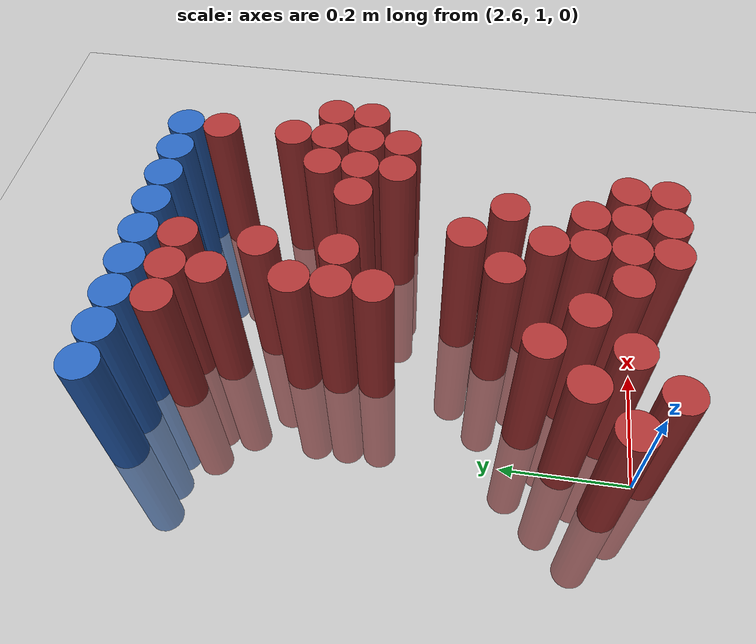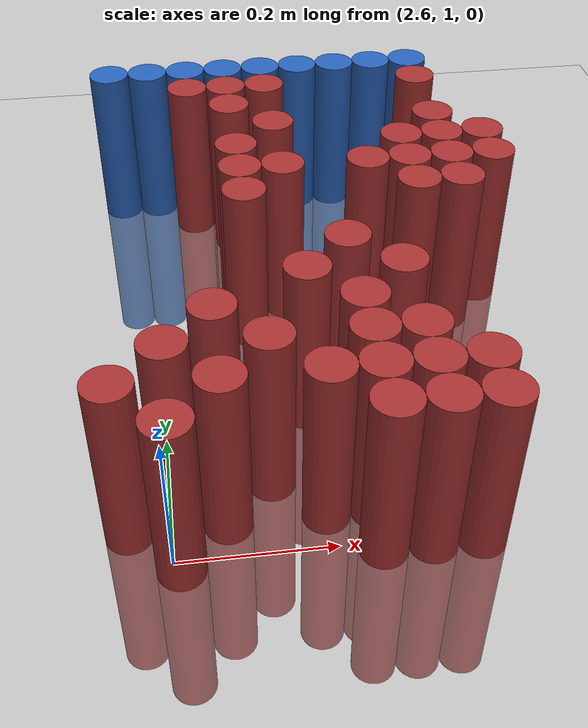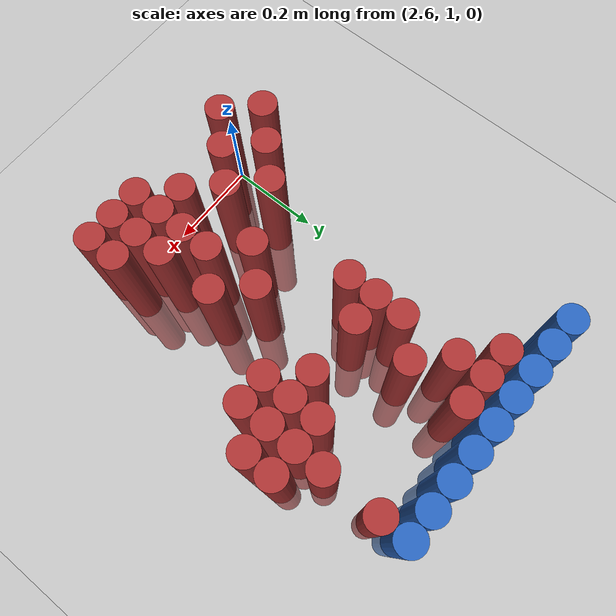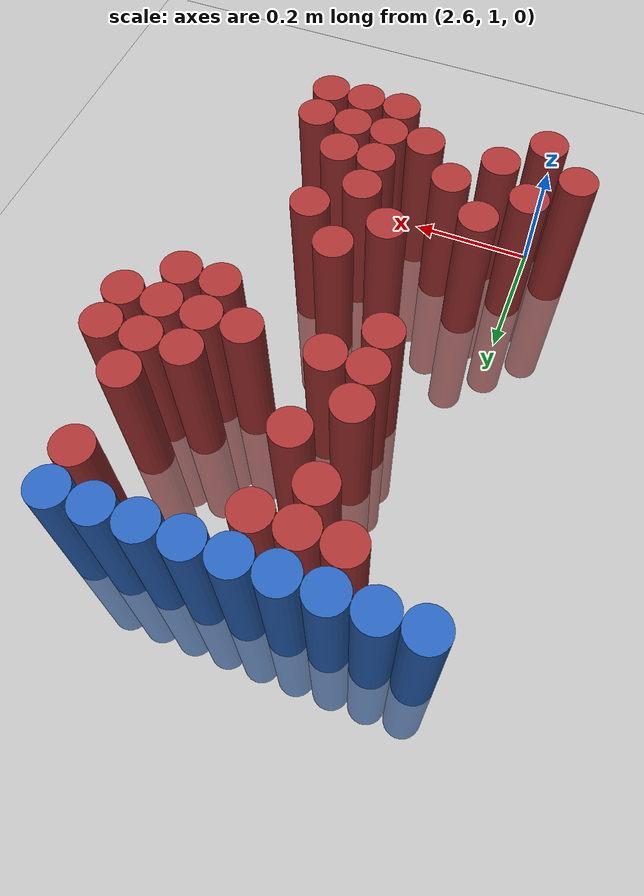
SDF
<sdf version="1.6">
 <world name="default">
  <model name="ground_plane">
   <static>1</static>
   <link name="link">
    <collision name="collision">
     <geometry><plane><normal>0 0 1</normal><size>100 100</size></plane></geometry>
     <surface><friction><ode><mu>100</mu><mu2>50</mu2></ode></friction></surface>
    </collision>
    <visual name="visual">
     <cast_shadows>0</cast_shadows>
     <geometry><plane><normal>0 0 1</normal><size>100 100</size></plane></geometry>
     <material>
      <script><uri>file://media/materials/scripts/gazebo.material</uri><name>Gazebo/Grey</name></script>
     </material>
    </visual>
   </link>
  </model>
  <model name="unit_cylinder_103">
   <static>1</static>
   <pose>2.550000 1.770000 0.000000 0.000000 0.000000 0.000000</pose>
   <link name="link">
    <inertial>
     <mass>1</mass>
     <inertia><ixx>0.145833</ixx><ixy>0</ixy><ixz>0</ixz><iyy>0.145833</iyy><iyz>0</iyz><izz>0.125</izz></inertia>
    </inertial>
    <collision name="collision">
     <geometry><cylinder><radius>0.030000</radius><length>0.5</length></cylinder></geometry>
    </collision>
    <visual name="visual">
     <geometry><cylinder><radius>0.030000</radius><length>0.5</length></cylinder></geometry>
     <material>
      <ambient>0.152000 0.379000 0.720000 1</ambient>
      <diffuse>0.152000 0.379000 0.720000 1</diffuse>
     </material>
     <material>
      <script><name>Gazebo/Grey</name><uri>file://media/materials/scripts/gazebo.material</uri></script>
     </material>
    </visual>
   </link>
  </model>
  <model name="unit_cylinder_104">
   <static>1</static>
   <pose>2.610000 1.770000 0.000000 0.000000 0.000000 0.000000</pose>
   <link name="link">
    <inertial>
     <mass>1</mass>
     <inertia><ixx>0.145833</ixx><ixy>0</ixy><ixz>0</ixz><iyy>0.145833</iyy><iyz>0</iyz><izz>0.125</izz></inertia>
    </inertial>
    <collision name="collision">
     <geometry><cylinder><radius>0.030000</radius><length>0.5</length></cylinder></geometry>
    </collision>
    <visual name="visual">
     <geometry><cylinder><radius>0.030000</radius><length>0.5</length></cylinder></geometry>
     <material>
      <ambient>0.152000 0.379000 0.720000 1</ambient>
      <diffuse>0.152000 0.379000 0.720000 1</diffuse>
     </material>
     <material>
      <script><name>Gazebo/Grey</name><uri>file://media/materials/scripts/gazebo.material</uri></script>
     </material>
    </visual>
   </link>
  </model>
  <model name="unit_cylinder_105">
   <static>1</static>
   <pose>2.670000 1.770000 0.000000 0.000000 0.000000 0.000000</pose>
   <link name="link">
    <inertial>
     <mass>1</mass>
     <inertia><ixx>0.145833</ixx><ixy>0</ixy><ixz>0</ixz><iyy>0.145833</iyy><iyz>0</iyz><izz>0.125</izz></inertia>
    </inertial>
    <collision name="collision">
     <geometry><cylinder><radius>0.030000</radius><length>0.5</length></cylinder></geometry>
    </collision>
    <visual name="visual">
     <geometry><cylinder><radius>0.030000</radius><length>0.5</length></cylinder></geometry>
     <material>
      <ambient>0.152000 0.379000 0.720000 1</ambient>
      <diffuse>0.152000 0.379000 0.720000 1</diffuse>
     </material>
     <material>
      <script><name>Gazebo/Grey</name><uri>file://media/materials/scripts/gazebo.material</uri></script>
     </material>
    </visual>
   </link>
  </model>
  <model name="unit_cylinder_106">
   <static>1</static>
   <pose>2.730000 1.770000 0.000000 0.000000 0.000000 0.000000</pose>
   <link name="link">
    <inertial>
     <mass>1</mass>
     <inertia><ixx>0.145833</ixx><ixy>0</ixy><ixz>0</ixz><iyy>0.145833</iyy><iyz>0</iyz><izz>0.125</izz></inertia>
    </inertial>
    <collision name="collision">
     <geometry><cylinder><radius>0.030000</radius><length>0.5</length></cylinder></geometry>
    </collision>
    <visual name="visual">
     <geometry><cylinder><radius>0.030000</radius><length>0.5</length></cylinder></geometry>
     <material>
      <ambient>0.152000 0.379000 0.720000 1</ambient>
      <diffuse>0.152000 0.379000 0.720000 1</diffuse>
     </material>
     <material>
      <script><name>Gazebo/Grey</name><uri>file://media/materials/scripts/gazebo.material</uri></script>
     </material>
    </visual>
   </link>
  </model>
  <model name="unit_cylinder_107">
   <static>1</static>
   <pose>2.790000 1.770000 0.000000 0.000000 0.000000 0.000000</pose>
   <link name="link">
    <inertial>
     <mass>1</mass>
     <inertia><ixx>0.145833</ixx><ixy>0</ixy><ixz>0</ixz><iyy>0.145833</iyy><iyz>0</iyz><izz>0.125</izz></inertia>
    </inertial>
    <collision name="collision">
     <geometry><cylinder><radius>0.030000</radius><length>0.5</length></cylinder></geometry>
    </collision>
    <visual name="visual">
     <geometry><cylinder><radius>0.030000</radius><length>0.5</length></cylinder></geometry>
     <material>
      <ambient>0.152000 0.379000 0.720000 1</ambient>
      <diffuse>0.152000 0.379000 0.720000 1</diffuse>
     </material>
     <material>
      <script><name>Gazebo/Grey</name><uri>file://media/materials/scripts/gazebo.material</uri></script>
     </material>
    </visual>
   </link>
  </model>
  <model name="unit_cylinder_108">
   <static>1</static>
   <pose>2.850000 1.770000 0.000000 0.000000 0.000000 0.000000</pose>
   <link name="link">
    <inertial>
     <mass>1</mass>
     <inertia><ixx>0.145833</ixx><ixy>0</ixy><ixz>0</ixz><iyy>0.145833</iyy><iyz>0</iyz><izz>0.125</izz></inertia>
    </inertial>
    <collision name="collision">
     <geometry><cylinder><radius>0.030000</radius><length>0.5</length></cylinder></geometry>
    </collision>
    <visual name="visual">
     <geometry><cylinder><radius>0.030000</radius><length>0.5</length></cylinder></geometry>
     <material>
      <ambient>0.152000 0.379000 0.720000 1</ambient>
      <diffuse>0.152000 0.379000 0.720000 1</diffuse>
     </material>
     <material>
      <script><name>Gazebo/Grey</name><uri>file://media/materials/scripts/gazebo.material</uri></script>
     </material>
    </visual>
   </link>
  </model>
  <model name="unit_cylinder_109">
   <static>1</static>
   <pose>2.910000 1.770000 0.000000 0.000000 0.000000 0.000000</pose>
   <link name="link">
    <inertial>
     <mass>1</mass>
     <inertia><ixx>0.145833</ixx><ixy>0</ixy><ixz>0</ixz><iyy>0.145833</iyy><iyz>0</iyz><izz>0.125</izz></inertia>
    </inertial>
    <collision name="collision">
     <geometry><cylinder><radius>0.030000</radius><length>0.5</length></cylinder></geometry>
    </collision>
    <visual name="visual">
     <geometry><cylinder><radius>0.030000</radius><length>0.5</length></cylinder></geometry>
     <material>
      <ambient>0.152000 0.379000 0.720000 1</ambient>
      <diffuse>0.152000 0.379000 0.720000 1</diffuse>
     </material>
     <material>
      <script><name>Gazebo/Grey</name><uri>file://media/materials/scripts/gazebo.material</uri></script>
     </material>
    </visual>
   </link>
  </model>
  <model name="unit_cylinder_110">
   <static>1</static>
   <pose>2.970000 1.770000 0.000000 0.000000 0.000000 0.000000</pose>
   <link name="link">
    <inertial>
     <mass>1</mass>
     <inertia><ixx>0.145833</ixx><ixy>0</ixy><ixz>0</ixz><iyy>0.145833</iyy><iyz>0</iyz><izz>0.125</izz></inertia>
    </inertial>
    <collision name="collision">
     <geometry><cylinder><radius>0.030000</radius><length>0.5</length></cylinder></geometry>
    </collision>
    <visual name="visual">
     <geometry><cylinder><radius>0.030000</radius><length>0.5</length></cylinder></geometry>
     <material>
      <ambient>0.152000 0.379000 0.720000 1</ambient>
      <diffuse>0.152000 0.379000 0.720000 1</diffuse>
     </material>
     <material>
      <script><name>Gazebo/Grey</name><uri>file://media/materials/scripts/gazebo.material</uri></script>
     </material>
    </visual>
   </link>
  </model>
  <model name="unit_cylinder_111">
   <static>1</static>
   <pose>3.030000 1.770000 0.000000 0.000000 0.000000 0.000000</pose>
   <link name="link">
    <inertial>
     <mass>1</mass>
     <inertia><ixx>0.145833</ixx><ixy>0</ixy><ixz>0</ixz><iyy>0.145833</iyy><iyz>0</iyz><izz>0.125</izz></inertia>
    </inertial>
    <collision name="collision">
     <geometry><cylinder><radius>0.030000</radius><length>0.5</length></cylinder></geometry>
    </collision>
    <visual name="visual">
     <geometry><cylinder><radius>0.030000</radius><length>0.5</length></cylinder></geometry>
     <material>
      <ambient>0.152000 0.379000 0.720000 1</ambient>
      <diffuse>0.152000 0.379000 0.720000 1</diffuse>
     </material>
     <material>
      <script><name>Gazebo/Grey</name><uri>file://media/materials/scripts/gazebo.material</uri></script>
     </material>
    </visual>
   </link>
  </model>
  <model name="unit_cylinder_127">
   <static>1</static>
   <pose>2.670000 1.710000 0.000000 0.000000 0.000000 0.000000</pose>
   <link name="link">
    <inertial>
     <mass>1</mass>
     <inertia><ixx>0.145833</ixx><ixy>0</ixy><ixz>0</ixz><iyy>0.145833</iyy><iyz>0</iyz><izz>0.125</izz></inertia>
    </inertial>
    <collision name="collision">
     <geometry><cylinder><radius>0.030000</radius><length>0.5</length></cylinder></geometry>
    </collision>
    <visual name="visual">
     <geometry><cylinder><radius>0.030000</radius><length>0.5</length></cylinder></geometry>
     <material>
      <ambient>0.648000 0.192000 0.192000 1</ambient>
      <diffuse>0.648000 0.192000 0.192000 1</diffuse>
     </material>
     <material>
      <script><name>Gazebo/Grey</name><uri>file://media/materials/scripts/gazebo.material</uri></script>
     </material>
    </visual>
   </link>
  </model>
  <model name="unit_cylinder_128">
   <static>1</static>
   <pose>2.730000 1.710000 0.000000 0.000000 0.000000 0.000000</pose>
   <link name="link">
    <inertial>
     <mass>1</mass>
     <inertia><ixx>0.145833</ixx><ixy>0</ixy><ixz>0</ixz><iyy>0.145833</iyy><iyz>0</iyz><izz>0.125</izz></inertia>
    </inertial>
    <collision name="collision">
     <geometry><cylinder><radius>0.030000</radius><length>0.5</length></cylinder></geometry>
    </collision>
    <visual name="visual">
     <geometry><cylinder><radius>0.030000</radius><length>0.5</length></cylinder></geometry>
     <material>
      <ambient>0.648000 0.192000 0.192000 1</ambient>
      <diffuse>0.648000 0.192000 0.192000 1</diffuse>
     </material>
     <material>
      <script><name>Gazebo/Grey</name><uri>file://media/materials/scripts/gazebo.material</uri></script>
     </material>
    </visual>
   </link>
  </model>
  <model name="unit_cylinder_129">
   <static>1</static>
   <pose>2.790000 1.710000 0.000000 0.000000 0.000000 0.000000</pose>
   <link name="link">
    <inertial>
     <mass>1</mass>
     <inertia><ixx>0.145833</ixx><ixy>0</ixy><ixz>0</ixz><iyy>0.145833</iyy><iyz>0</iyz><izz>0.125</izz></inertia>
    </inertial>
    <collision name="collision">
     <geometry><cylinder><radius>0.030000</radius><length>0.5</length></cylinder></geometry>
    </collision>
    <visual name="visual">
     <geometry><cylinder><radius>0.030000</radius><length>0.5</length></cylinder></geometry>
     <material>
      <ambient>0.648000 0.192000 0.192000 1</ambient>
      <diffuse>0.648000 0.192000 0.192000 1</diffuse>
     </material>
     <material>
      <script><name>Gazebo/Grey</name><uri>file://media/materials/scripts/gazebo.material</uri></script>
     </material>
    </visual>
   </link>
  </model>
  <model name="unit_cylinder_130">
   <static>1</static>
   <pose>3.030000 1.710000 0.000000 0.000000 0.000000 0.000000</pose>
   <link name="link">
    <inertial>
     <mass>1</mass>
     <inertia><ixx>0.145833</ixx><ixy>0</ixy><ixz>0</ixz><iyy>0.145833</iyy><iyz>0</iyz><izz>0.125</izz></inertia>
    </inertial>
    <collision name="collision">
     <geometry><cylinder><radius>0.030000</radius><length>0.5</length></cylinder></geometry>
    </collision>
    <visual name="visual">
     <geometry><cylinder><radius>0.030000</radius><length>0.5</length></cylinder></geometry>
     <material>
      <ambient>0.648000 0.192000 0.192000 1</ambient>
      <diffuse>0.648000 0.192000 0.192000 1</diffuse>
     </material>
     <material>
      <script><name>Gazebo/Grey</name><uri>file://media/materials/scripts/gazebo.material</uri></script>
     </material>
    </visual>
   </link>
  </model>
  <model name="unit_cylinder_137">
   <static>1</static>
   <pose>2.730000 1.650000 0.000000 0.000000 0.000000 0.000000</pose>
   <link name="link">
    <inertial>
     <mass>1</mass>
     <inertia><ixx>0.145833</ixx><ixy>0</ixy><ixz>0</ixz><iyy>0.145833</iyy><iyz>0</iyz><izz>0.125</izz></inertia>
    </inertial>
    <collision name="collision">
     <geometry><cylinder><radius>0.030000</radius><length>0.5</length></cylinder></geometry>
    </collision>
    <visual name="visual">
     <geometry><cylinder><radius>0.030000</radius><length>0.5</length></cylinder></geometry>
     <material>
      <ambient>0.648000 0.192000 0.192000 1</ambient>
      <diffuse>0.648000 0.192000 0.192000 1</diffuse>
     </material>
     <material>
      <script><name>Gazebo/Grey</name><uri>file://media/materials/scripts/gazebo.material</uri></script>
     </material>
    </visual>
   </link>
  </model>
  <model name="unit_cylinder_143">
   <static>1</static>
   <pose>2.790000 1.590000 0.000000 0.000000 0.000000 0.000000</pose>
   <link name="link">
    <inertial>
     <mass>1</mass>
     <inertia><ixx>0.145833</ixx><ixy>0</ixy><ixz>0</ixz><iyy>0.145833</iyy><iyz>0</iyz><izz>0.125</izz></inertia>
    </inertial>
    <collision name="collision">
     <geometry><cylinder><radius>0.030000</radius><length>0.5</length></cylinder></geometry>
    </collision>
    <visual name="visual">
     <geometry><cylinder><radius>0.030000</radius><length>0.5</length></cylinder></geometry>
     <material>
      <ambient>0.648000 0.192000 0.192000 1</ambient>
      <diffuse>0.648000 0.192000 0.192000 1</diffuse>
     </material>
     <material>
      <script><name>Gazebo/Grey</name><uri>file://media/materials/scripts/gazebo.material</uri></script>
     </material>
    </visual>
   </link>
  </model>
  <model name="unit_cylinder_144">
   <static>1</static>
   <pose>3.030000 1.590000 0.000000 0.000000 0.000000 0.000000</pose>
   <link name="link">
    <inertial>
     <mass>1</mass>
     <inertia><ixx>0.145833</ixx><ixy>0</ixy><ixz>0</ixz><iyy>0.145833</iyy><iyz>0</iyz><izz>0.125</izz></inertia>
    </inertial>
    <collision name="collision">
     <geometry><cylinder><radius>0.030000</radius><length>0.5</length></cylinder></geometry>
    </collision>
    <visual name="visual">
     <geometry><cylinder><radius>0.030000</radius><length>0.5</length></cylinder></geometry>
     <material>
      <ambient>0.648000 0.192000 0.192000 1</ambient>
      <diffuse>0.648000 0.192000 0.192000 1</diffuse>
     </material>
     <material>
      <script><name>Gazebo/Grey</name><uri>file://media/materials/scripts/gazebo.material</uri></script>
     </material>
    </visual>
   </link>
  </model>
  <model name="unit_cylinder_151">
   <static>1</static>
   <pose>2.730000 1.530000 0.000000 0.000000 0.000000 0.000000</pose>
   <link name="link">
    <inertial>
     <mass>1</mass>
     <inertia><ixx>0.145833</ixx><ixy>0</ixy><ixz>0</ixz><iyy>0.145833</iyy><iyz>0</iyz><izz>0.125</izz></inertia>
    </inertial>
    <collision name="collision">
     <geometry><cylinder><radius>0.030000</radius><length>0.5</length></cylinder></geometry>
    </collision>
    <visual name="visual">
     <geometry><cylinder><radius>0.030000</radius><length>0.5</length></cylinder></geometry>
     <material>
      <ambient>0.648000 0.192000 0.192000 1</ambient>
      <diffuse>0.648000 0.192000 0.192000 1</diffuse>
     </material>
     <material>
      <script><name>Gazebo/Grey</name><uri>file://media/materials/scripts/gazebo.material</uri></script>
     </material>
    </visual>
   </link>
  </model>
  <model name="unit_cylinder_152">
   <static>1</static>
   <pose>2.970000 1.530000 0.000000 0.000000 0.000000 0.000000</pose>
   <link name="link">
    <inertial>
     <mass>1</mass>
     <inertia><ixx>0.145833</ixx><ixy>0</ixy><ixz>0</ixz><iyy>0.145833</iyy><iyz>0</iyz><izz>0.125</izz></inertia>
    </inertial>
    <collision name="collision">
     <geometry><cylinder><radius>0.030000</radius><length>0.5</length></cylinder></geometry>
    </collision>
    <visual name="visual">
     <geometry><cylinder><radius>0.030000</radius><length>0.5</length></cylinder></geometry>
     <material>
      <ambient>0.648000 0.192000 0.192000 1</ambient>
      <diffuse>0.648000 0.192000 0.192000 1</diffuse>
     </material>
     <material>
      <script><name>Gazebo/Grey</name><uri>file://media/materials/scripts/gazebo.material</uri></script>
     </material>
    </visual>
   </link>
  </model>
  <model name="unit_cylinder_153">
   <static>1</static>
   <pose>3.030000 1.530000 0.000000 0.000000 0.000000 0.000000</pose>
   <link name="link">
    <inertial>
     <mass>1</mass>
     <inertia><ixx>0.145833</ixx><ixy>0</ixy><ixz>0</ixz><iyy>0.145833</iyy><iyz>0</iyz><izz>0.125</izz></inertia>
    </inertial>
    <collision name="collision">
     <geometry><cylinder><radius>0.030000</radius><length>0.5</length></cylinder></geometry>
    </collision>
    <visual name="visual">
     <geometry><cylinder><radius>0.030000</radius><length>0.5</length></cylinder></geometry>
     <material>
      <ambient>0.648000 0.192000 0.192000 1</ambient>
      <diffuse>0.648000 0.192000 0.192000 1</diffuse>
     </material>
     <material>
      <script><name>Gazebo/Grey</name><uri>file://media/materials/scripts/gazebo.material</uri></script>
     </material>
    </visual>
   </link>
  </model>
  <model name="unit_cylinder_154">
   <static>1</static>
   <pose>3.090000 1.530000 0.000000 0.000000 0.000000 0.000000</pose>
   <link name="link">
    <inertial>
     <mass>1</mass>
     <inertia><ixx>0.145833</ixx><ixy>0</ixy><ixz>0</ixz><iyy>0.145833</iyy><iyz>0</iyz><izz>0.125</izz></inertia>
    </inertial>
    <collision name="collision">
     <geometry><cylinder><radius>0.030000</radius><length>0.5</length></cylinder></geometry>
    </collision>
    <visual name="visual">
     <geometry><cylinder><radius>0.030000</radius><length>0.5</length></cylinder></geometry>
     <material>
      <ambient>0.648000 0.192000 0.192000 1</ambient>
      <diffuse>0.648000 0.192000 0.192000 1</diffuse>
     </material>
     <material>
      <script><name>Gazebo/Grey</name><uri>file://media/materials/scripts/gazebo.material</uri></script>
     </material>
    </visual>
   </link>
  </model>
  <model name="unit_cylinder_157">
   <static>1</static>
   <pose>2.730000 1.470000 0.000000 0.000000 0.000000 0.000000</pose>
   <link name="link">
    <inertial>
     <mass>1</mass>
     <inertia><ixx>0.145833</ixx><ixy>0</ixy><ixz>0</ixz><iyy>0.145833</iyy><iyz>0</iyz><izz>0.125</izz></inertia>
    </inertial>
    <collision name="collision">
     <geometry><cylinder><radius>0.030000</radius><length>0.5</length></cylinder></geometry>
    </collision>
    <visual name="visual">
     <geometry><cylinder><radius>0.030000</radius><length>0.5</length></cylinder></geometry>
     <material>
      <ambient>0.648000 0.192000 0.192000 1</ambient>
      <diffuse>0.648000 0.192000 0.192000 1</diffuse>
     </material>
     <material>
      <script><name>Gazebo/Grey</name><uri>file://media/materials/scripts/gazebo.material</uri></script>
     </material>
    </visual>
   </link>
  </model>
  <model name="unit_cylinder_158">
   <static>1</static>
   <pose>2.790000 1.470000 0.000000 0.000000 0.000000 0.000000</pose>
   <link name="link">
    <inertial>
     <mass>1</mass>
     <inertia><ixx>0.145833</ixx><ixy>0</ixy><ixz>0</ixz><iyy>0.145833</iyy><iyz>0</iyz><izz>0.125</izz></inertia>
    </inertial>
    <collision name="collision">
     <geometry><cylinder><radius>0.030000</radius><length>0.5</length></cylinder></geometry>
    </collision>
    <visual name="visual">
     <geometry><cylinder><radius>0.030000</radius><length>0.5</length></cylinder></geometry>
     <material>
      <ambient>0.648000 0.192000 0.192000 1</ambient>
      <diffuse>0.648000 0.192000 0.192000 1</diffuse>
     </material>
     <material>
      <script><name>Gazebo/Grey</name><uri>file://media/materials/scripts/gazebo.material</uri></script>
     </material>
    </visual>
   </link>
  </model>
  <model name="unit_cylinder_159">
   <static>1</static>
   <pose>2.910000 1.470000 0.000000 0.000000 0.000000 0.000000</pose>
   <link name="link">
    <inertial>
     <mass>1</mass>
     <inertia><ixx>0.145833</ixx><ixy>0</ixy><ixz>0</ixz><iyy>0.145833</iyy><iyz>0</iyz><izz>0.125</izz></inertia>
    </inertial>
    <collision name="collision">
     <geometry><cylinder><radius>0.030000</radius><length>0.5</length></cylinder></geometry>
    </collision>
    <visual name="visual">
     <geometry><cylinder><radius>0.030000</radius><length>0.5</length></cylinder></geometry>
     <material>
      <ambient>0.648000 0.192000 0.192000 1</ambient>
      <diffuse>0.648000 0.192000 0.192000 1</diffuse>
     </material>
     <material>
      <script><name>Gazebo/Grey</name><uri>file://media/materials/scripts/gazebo.material</uri></script>
     </material>
    </visual>
   </link>
  </model>
  <model name="unit_cylinder_160">
   <static>1</static>
   <pose>2.970000 1.470000 0.000000 0.000000 0.000000 0.000000</pose>
   <link name="link">
    <inertial>
     <mass>1</mass>
     <inertia><ixx>0.145833</ixx><ixy>0</ixy><ixz>0</ixz><iyy>0.145833</iyy><iyz>0</iyz><izz>0.125</izz></inertia>
    </inertial>
    <collision name="collision">
     <geometry><cylinder><radius>0.030000</radius><length>0.5</length></cylinder></geometry>
    </collision>
    <visual name="visual">
     <geometry><cylinder><radius>0.030000</radius><length>0.5</length></cylinder></geometry>
     <material>
      <ambient>0.648000 0.192000 0.192000 1</ambient>
      <diffuse>0.648000 0.192000 0.192000 1</diffuse>
     </material>
     <material>
      <script><name>Gazebo/Grey</name><uri>file://media/materials/scripts/gazebo.material</uri></script>
     </material>
    </visual>
   </link>
  </model>
  <model name="unit_cylinder_161">
   <static>1</static>
   <pose>3.030000 1.470000 0.000000 0.000000 0.000000 0.000000</pose>
   <link name="link">
    <inertial>
     <mass>1</mass>
     <inertia><ixx>0.145833</ixx><ixy>0</ixy><ixz>0</ixz><iyy>0.145833</iyy><iyz>0</iyz><izz>0.125</izz></inertia>
    </inertial>
    <collision name="collision">
     <geometry><cylinder><radius>0.030000</radius><length>0.5</length></cylinder></geometry>
    </collision>
    <visual name="visual">
     <geometry><cylinder><radius>0.030000</radius><length>0.5</length></cylinder></geometry>
     <material>
      <ambient>0.648000 0.192000 0.192000 1</ambient>
      <diffuse>0.648000 0.192000 0.192000 1</diffuse>
     </material>
     <material>
      <script><name>Gazebo/Grey</name><uri>file://media/materials/scripts/gazebo.material</uri></script>
     </material>
    </visual>
   </link>
  </model>
  <model name="unit_cylinder_162">
   <static>1</static>
   <pose>3.090000 1.470000 0.000000 0.000000 0.000000 0.000000</pose>
   <link name="link">
    <inertial>
     <mass>1</mass>
     <inertia><ixx>0.145833</ixx><ixy>0</ixy><ixz>0</ixz><iyy>0.145833</iyy><iyz>0</iyz><izz>0.125</izz></inertia>
    </inertial>
    <collision name="collision">
     <geometry><cylinder><radius>0.030000</radius><length>0.5</length></cylinder></geometry>
    </collision>
    <visual name="visual">
     <geometry><cylinder><radius>0.030000</radius><length>0.5</length></cylinder></geometry>
     <material>
      <ambient>0.648000 0.192000 0.192000 1</ambient>
      <diffuse>0.648000 0.192000 0.192000 1</diffuse>
     </material>
     <material>
      <script><name>Gazebo/Grey</name><uri>file://media/materials/scripts/gazebo.material</uri></script>
     </material>
    </visual>
   </link>
  </model>
  <model name="unit_cylinder_165">
   <static>1</static>
   <pose>2.730000 1.410000 0.000000 0.000000 0.000000 0.000000</pose>
   <link name="link">
    <inertial>
     <mass>1</mass>
     <inertia><ixx>0.145833</ixx><ixy>0</ixy><ixz>0</ixz><iyy>0.145833</iyy><iyz>0</iyz><izz>0.125</izz></inertia>
    </inertial>
    <collision name="collision">
     <geometry><cylinder><radius>0.030000</radius><length>0.5</length></cylinder></geometry>
    </collision>
    <visual name="visual">
     <geometry><cylinder><radius>0.030000</radius><length>0.5</length></cylinder></geometry>
     <material>
      <ambient>0.648000 0.192000 0.192000 1</ambient>
      <diffuse>0.648000 0.192000 0.192000 1</diffuse>
     </material>
     <material>
      <script><name>Gazebo/Grey</name><uri>file://media/materials/scripts/gazebo.material</uri></script>
     </material>
    </visual>
   </link>
  </model>
  <model name="unit_cylinder_166">
   <static>1</static>
   <pose>2.970000 1.410000 0.000000 0.000000 0.000000 0.000000</pose>
   <link name="link">
    <inertial>
     <mass>1</mass>
     <inertia><ixx>0.145833</ixx><ixy>0</ixy><ixz>0</ixz><iyy>0.145833</iyy><iyz>0</iyz><izz>0.125</izz></inertia>
    </inertial>
    <collision name="collision">
     <geometry><cylinder><radius>0.030000</radius><length>0.5</length></cylinder></geometry>
    </collision>
    <visual name="visual">
     <geometry><cylinder><radius>0.030000</radius><length>0.5</length></cylinder></geometry>
     <material>
      <ambient>0.648000 0.192000 0.192000 1</ambient>
      <diffuse>0.648000 0.192000 0.192000 1</diffuse>
     </material>
     <material>
      <script><name>Gazebo/Grey</name><uri>file://media/materials/scripts/gazebo.material</uri></script>
     </material>
    </visual>
   </link>
  </model>
  <model name="unit_cylinder_167">
   <static>1</static>
   <pose>3.030000 1.410000 0.000000 0.000000 0.000000 0.000000</pose>
   <link name="link">
    <inertial>
     <mass>1</mass>
     <inertia><ixx>0.145833</ixx><ixy>0</ixy><ixz>0</ixz><iyy>0.145833</iyy><iyz>0</iyz><izz>0.125</izz></inertia>
    </inertial>
    <collision name="collision">
     <geometry><cylinder><radius>0.030000</radius><length>0.5</length></cylinder></geometry>
    </collision>
    <visual name="visual">
     <geometry><cylinder><radius>0.030000</radius><length>0.5</length></cylinder></geometry>
     <material>
      <ambient>0.648000 0.192000 0.192000 1</ambient>
      <diffuse>0.648000 0.192000 0.192000 1</diffuse>
     </material>
     <material>
      <script><name>Gazebo/Grey</name><uri>file://media/materials/scripts/gazebo.material</uri></script>
     </material>
    </visual>
   </link>
  </model>
  <model name="unit_cylinder_176">
   <static>1</static>
   <pose>2.850000 1.290000 0.000000 0.000000 0.000000 0.000000</pose>
   <link name="link">
    <inertial>
     <mass>1</mass>
     <inertia><ixx>0.145833</ixx><ixy>0</ixy><ixz>0</ixz><iyy>0.145833</iyy><iyz>0</iyz><izz>0.125</izz></inertia>
    </inertial>
    <collision name="collision">
     <geometry><cylinder><radius>0.030000</radius><length>0.5</length></cylinder></geometry>
    </collision>
    <visual name="visual">
     <geometry><cylinder><radius>0.030000</radius><length>0.5</length></cylinder></geometry>
     <material>
      <ambient>0.648000 0.192000 0.192000 1</ambient>
      <diffuse>0.648000 0.192000 0.192000 1</diffuse>
     </material>
     <material>
      <script><name>Gazebo/Grey</name><uri>file://media/materials/scripts/gazebo.material</uri></script>
     </material>
    </visual>
   </link>
  </model>
  <model name="unit_cylinder_182">
   <static>1</static>
   <pose>2.790000 1.230000 0.000000 0.000000 0.000000 0.000000</pose>
   <link name="link">
    <inertial>
     <mass>1</mass>
     <inertia><ixx>0.145833</ixx><ixy>0</ixy><ixz>0</ixz><iyy>0.145833</iyy><iyz>0</iyz><izz>0.125</izz></inertia>
    </inertial>
    <collision name="collision">
     <geometry><cylinder><radius>0.030000</radius><length>0.5</length></cylinder></geometry>
    </collision>
    <visual name="visual">
     <geometry><cylinder><radius>0.030000</radius><length>0.5</length></cylinder></geometry>
     <material>
      <ambient>0.648000 0.192000 0.192000 1</ambient>
      <diffuse>0.648000 0.192000 0.192000 1</diffuse>
     </material>
     <material>
      <script><name>Gazebo/Grey</name><uri>file://media/materials/scripts/gazebo.material</uri></script>
     </material>
    </visual>
   </link>
  </model>
  <model name="unit_cylinder_183">
   <static>1</static>
   <pose>2.910000 1.230000 0.000000 0.000000 0.000000 0.000000</pose>
   <link name="link">
    <inertial>
     <mass>1</mass>
     <inertia><ixx>0.145833</ixx><ixy>0</ixy><ixz>0</ixz><iyy>0.145833</iyy><iyz>0</iyz><izz>0.125</izz></inertia>
    </inertial>
    <collision name="collision">
     <geometry><cylinder><radius>0.030000</radius><length>0.5</length></cylinder></geometry>
    </collision>
    <visual name="visual">
     <geometry><cylinder><radius>0.030000</radius><length>0.5</length></cylinder></geometry>
     <material>
      <ambient>0.648000 0.192000 0.192000 1</ambient>
      <diffuse>0.648000 0.192000 0.192000 1</diffuse>
     </material>
     <material>
      <script><name>Gazebo/Grey</name><uri>file://media/materials/scripts/gazebo.material</uri></script>
     </material>
    </visual>
   </link>
  </model>
  <model name="unit_cylinder_188">
   <static>1</static>
   <pose>2.670000 1.170000 0.000000 0.000000 0.000000 0.000000</pose>
   <link name="link">
    <inertial>
     <mass>1</mass>
     <inertia><ixx>0.145833</ixx><ixy>0</ixy><ixz>0</ixz><iyy>0.145833</iyy><iyz>0</iyz><izz>0.125</izz></inertia>
    </inertial>
    <collision name="collision">
     <geometry><cylinder><radius>0.030000</radius><length>0.5</length></cylinder></geometry>
    </collision>
    <visual name="visual">
     <geometry><cylinder><radius>0.030000</radius><length>0.5</length></cylinder></geometry>
     <material>
      <ambient>0.648000 0.192000 0.192000 1</ambient>
      <diffuse>0.648000 0.192000 0.192000 1</diffuse>
     </material>
     <material>
      <script><name>Gazebo/Grey</name><uri>file://media/materials/scripts/gazebo.material</uri></script>
     </material>
    </visual>
   </link>
  </model>
  <model name="unit_cylinder_189">
   <static>1</static>
   <pose>2.850000 1.170000 0.000000 0.000000 0.000000 0.000000</pose>
   <link name="link">
    <inertial>
     <mass>1</mass>
     <inertia><ixx>0.145833</ixx><ixy>0</ixy><ixz>0</ixz><iyy>0.145833</iyy><iyz>0</iyz><izz>0.125</izz></inertia>
    </inertial>
    <collision name="collision">
     <geometry><cylinder><radius>0.030000</radius><length>0.5</length></cylinder></geometry>
    </collision>
    <visual name="visual">
     <geometry><cylinder><radius>0.030000</radius><length>0.5</length></cylinder></geometry>
     <material>
      <ambient>0.648000 0.192000 0.192000 1</ambient>
      <diffuse>0.648000 0.192000 0.192000 1</diffuse>
     </material>
     <material>
      <script><name>Gazebo/Grey</name><uri>file://media/materials/scripts/gazebo.material</uri></script>
     </material>
    </visual>
   </link>
  </model>
  <model name="unit_cylinder_193">
   <static>1</static>
   <pose>2.610000 1.110000 0.000000 0.000000 0.000000 0.000000</pose>
   <link name="link">
    <inertial>
     <mass>1</mass>
     <inertia><ixx>0.145833</ixx><ixy>0</ixy><ixz>0</ixz><iyy>0.145833</iyy><iyz>0</iyz><izz>0.125</izz></inertia>
    </inertial>
    <collision name="collision">
     <geometry><cylinder><radius>0.030000</radius><length>0.5</length></cylinder></geometry>
    </collision>
    <visual name="visual">
     <geometry><cylinder><radius>0.030000</radius><length>0.5</length></cylinder></geometry>
     <material>
      <ambient>0.648000 0.192000 0.192000 1</ambient>
      <diffuse>0.648000 0.192000 0.192000 1</diffuse>
     </material>
     <material>
      <script><name>Gazebo/Grey</name><uri>file://media/materials/scripts/gazebo.material</uri></script>
     </material>
    </visual>
   </link>
  </model>
  <model name="unit_cylinder_194">
   <static>1</static>
   <pose>2.730000 1.110000 0.000000 0.000000 0.000000 0.000000</pose>
   <link name="link">
    <inertial>
     <mass>1</mass>
     <inertia><ixx>0.145833</ixx><ixy>0</ixy><ixz>0</ixz><iyy>0.145833</iyy><iyz>0</iyz><izz>0.125</izz></inertia>
    </inertial>
    <collision name="collision">
     <geometry><cylinder><radius>0.030000</radius><length>0.5</length></cylinder></geometry>
    </collision>
    <visual name="visual">
     <geometry><cylinder><radius>0.030000</radius><length>0.5</length></cylinder></geometry>
     <material>
      <ambient>0.648000 0.192000 0.192000 1</ambient>
      <diffuse>0.648000 0.192000 0.192000 1</diffuse>
     </material>
     <material>
      <script><name>Gazebo/Grey</name><uri>file://media/materials/scripts/gazebo.material</uri></script>
     </material>
    </visual>
   </link>
  </model>
  <model name="unit_cylinder_195">
   <static>1</static>
   <pose>2.850000 1.110000 0.000000 0.000000 0.000000 0.000000</pose>
   <link name="link">
    <inertial>
     <mass>1</mass>
     <inertia><ixx>0.145833</ixx><ixy>0</ixy><ixz>0</ixz><iyy>0.145833</iyy><iyz>0</iyz><izz>0.125</izz></inertia>
    </inertial>
    <collision name="collision">
     <geometry><cylinder><radius>0.030000</radius><length>0.5</length></cylinder></geometry>
    </collision>
    <visual name="visual">
     <geometry><cylinder><radius>0.030000</radius><length>0.5</length></cylinder></geometry>
     <material>
      <ambient>0.648000 0.192000 0.192000 1</ambient>
      <diffuse>0.648000 0.192000 0.192000 1</diffuse>
     </material>
     <material>
      <script><name>Gazebo/Grey</name><uri>file://media/materials/scripts/gazebo.material</uri></script>
     </material>
    </visual>
   </link>
  </model>
  <model name="unit_cylinder_196">
   <static>1</static>
   <pose>2.910000 1.110000 0.000000 0.000000 0.000000 0.000000</pose>
   <link name="link">
    <inertial>
     <mass>1</mass>
     <inertia><ixx>0.145833</ixx><ixy>0</ixy><ixz>0</ixz><iyy>0.145833</iyy><iyz>0</iyz><izz>0.125</izz></inertia>
    </inertial>
    <collision name="collision">
     <geometry><cylinder><radius>0.030000</radius><length>0.5</length></cylinder></geometry>
    </collision>
    <visual name="visual">
     <geometry><cylinder><radius>0.030000</radius><length>0.5</length></cylinder></geometry>
     <material>
      <ambient>0.648000 0.192000 0.192000 1</ambient>
      <diffuse>0.648000 0.192000 0.192000 1</diffuse>
     </material>
     <material>
      <script><name>Gazebo/Grey</name><uri>file://media/materials/scripts/gazebo.material</uri></script>
     </material>
    </visual>
   </link>
  </model>
  <model name="unit_cylinder_201">
   <static>1</static>
   <pose>2.550000 1.050000 0.000000 0.000000 0.000000 0.000000</pose>
   <link name="link">
    <inertial>
     <mass>1</mass>
     <inertia><ixx>0.145833</ixx><ixy>0</ixy><ixz>0</ixz><iyy>0.145833</iyy><iyz>0</iyz><izz>0.125</izz></inertia>
    </inertial>
    <collision name="collision">
     <geometry><cylinder><radius>0.030000</radius><length>0.5</length></cylinder></geometry>
    </collision>
    <visual name="visual">
     <geometry><cylinder><radius>0.030000</radius><length>0.5</length></cylinder></geometry>
     <material>
      <ambient>0.648000 0.192000 0.192000 1</ambient>
      <diffuse>0.648000 0.192000 0.192000 1</diffuse>
     </material>
     <material>
      <script><name>Gazebo/Grey</name><uri>file://media/materials/scripts/gazebo.material</uri></script>
     </material>
    </visual>
   </link>
  </model>
  <model name="unit_cylinder_202">
   <static>1</static>
   <pose>2.670000 1.050000 0.000000 0.000000 0.000000 0.000000</pose>
   <link name="link">
    <inertial>
     <mass>1</mass>
     <inertia><ixx>0.145833</ixx><ixy>0</ixy><ixz>0</ixz><iyy>0.145833</iyy><iyz>0</iyz><izz>0.125</izz></inertia>
    </inertial>
    <collision name="collision">
     <geometry><cylinder><radius>0.030000</radius><length>0.5</length></cylinder></geometry>
    </collision>
    <visual name="visual">
     <geometry><cylinder><radius>0.030000</radius><length>0.5</length></cylinder></geometry>
     <material>
      <ambient>0.648000 0.192000 0.192000 1</ambient>
      <diffuse>0.648000 0.192000 0.192000 1</diffuse>
     </material>
     <material>
      <script><name>Gazebo/Grey</name><uri>file://media/materials/scripts/gazebo.material</uri></script>
     </material>
    </visual>
   </link>
  </model>
  <model name="unit_cylinder_203">
   <static>1</static>
   <pose>2.790000 1.050000 0.000000 0.000000 0.000000 0.000000</pose>
   <link name="link">
    <inertial>
     <mass>1</mass>
     <inertia><ixx>0.145833</ixx><ixy>0</ixy><ixz>0</ixz><iyy>0.145833</iyy><iyz>0</iyz><izz>0.125</izz></inertia>
    </inertial>
    <collision name="collision">
     <geometry><cylinder><radius>0.030000</radius><length>0.5</length></cylinder></geometry>
    </collision>
    <visual name="visual">
     <geometry><cylinder><radius>0.030000</radius><length>0.5</length></cylinder></geometry>
     <material>
      <ambient>0.648000 0.192000 0.192000 1</ambient>
      <diffuse>0.648000 0.192000 0.192000 1</diffuse>
     </material>
     <material>
      <script><name>Gazebo/Grey</name><uri>file://media/materials/scripts/gazebo.material</uri></script>
     </material>
    </visual>
   </link>
  </model>
  <model name="unit_cylinder_204">
   <static>1</static>
   <pose>2.850000 1.050000 0.000000 0.000000 0.000000 0.000000</pose>
   <link name="link">
    <inertial>
     <mass>1</mass>
     <inertia><ixx>0.145833</ixx><ixy>0</ixy><ixz>0</ixz><iyy>0.145833</iyy><iyz>0</iyz><izz>0.125</izz></inertia>
    </inertial>
    <collision name="collision">
     <geometry><cylinder><radius>0.030000</radius><length>0.5</length></cylinder></geometry>
    </collision>
    <visual name="visual">
     <geometry><cylinder><radius>0.030000</radius><length>0.5</length></cylinder></geometry>
     <material>
      <ambient>0.648000 0.192000 0.192000 1</ambient>
      <diffuse>0.648000 0.192000 0.192000 1</diffuse>
     </material>
     <material>
      <script><name>Gazebo/Grey</name><uri>file://media/materials/scripts/gazebo.material</uri></script>
     </material>
    </visual>
   </link>
  </model>
  <model name="unit_cylinder_205">
   <static>1</static>
   <pose>2.910000 1.050000 0.000000 0.000000 0.000000 0.000000</pose>
   <link name="link">
    <inertial>
     <mass>1</mass>
     <inertia><ixx>0.145833</ixx><ixy>0</ixy><ixz>0</ixz><iyy>0.145833</iyy><iyz>0</iyz><izz>0.125</izz></inertia>
    </inertial>
    <collision name="collision">
     <geometry><cylinder><radius>0.030000</radius><length>0.5</length></cylinder></geometry>
    </collision>
    <visual name="visual">
     <geometry><cylinder><radius>0.030000</radius><length>0.5</length></cylinder></geometry>
     <material>
      <ambient>0.648000 0.192000 0.192000 1</ambient>
      <diffuse>0.648000 0.192000 0.192000 1</diffuse>
     </material>
     <material>
      <script><name>Gazebo/Grey</name><uri>file://media/materials/scripts/gazebo.material</uri></script>
     </material>
    </visual>
   </link>
  </model>
  <model name="unit_cylinder_206">
   <static>1</static>
   <pose>2.970000 1.050000 0.000000 0.000000 0.000000 0.000000</pose>
   <link name="link">
    <inertial>
     <mass>1</mass>
     <inertia><ixx>0.145833</ixx><ixy>0</ixy><ixz>0</ixz><iyy>0.145833</iyy><iyz>0</iyz><izz>0.125</izz></inertia>
    </inertial>
    <collision name="collision">
     <geometry><cylinder><radius>0.030000</radius><length>0.5</length></cylinder></geometry>
    </collision>
    <visual name="visual">
     <geometry><cylinder><radius>0.030000</radius><length>0.5</length></cylinder></geometry>
     <material>
      <ambient>0.648000 0.192000 0.192000 1</ambient>
      <diffuse>0.648000 0.192000 0.192000 1</diffuse>
     </material>
     <material>
      <script><name>Gazebo/Grey</name><uri>file://media/materials/scripts/gazebo.material</uri></script>
     </material>
    </visual>
   </link>
  </model>
  <model name="unit_cylinder_209">
   <static>1</static>
   <pose>2.610000 0.990000 0.000000 0.000000 0.000000 0.000000</pose>
   <link name="link">
    <inertial>
     <mass>1</mass>
     <inertia><ixx>0.145833</ixx><ixy>0</ixy><ixz>0</ixz><iyy>0.145833</iyy><iyz>0</iyz><izz>0.125</izz></inertia>
    </inertial>
    <collision name="collision">
     <geometry><cylinder><radius>0.030000</radius><length>0.5</length></cylinder></geometry>
    </collision>
    <visual name="visual">
     <geometry><cylinder><radius>0.030000</radius><length>0.5</length></cylinder></geometry>
     <material>
      <ambient>0.648000 0.192000 0.192000 1</ambient>
      <diffuse>0.648000 0.192000 0.192000 1</diffuse>
     </material>
     <material>
      <script><name>Gazebo/Grey</name><uri>file://media/materials/scripts/gazebo.material</uri></script>
     </material>
    </visual>
   </link>
  </model>
  <model name="unit_cylinder_210">
   <static>1</static>
   <pose>2.850000 0.990000 0.000000 0.000000 0.000000 0.000000</pose>
   <link name="link">
    <inertial>
     <mass>1</mass>
     <inertia><ixx>0.145833</ixx><ixy>0</ixy><ixz>0</ixz><iyy>0.145833</iyy><iyz>0</iyz><izz>0.125</izz></inertia>
    </inertial>
    <collision name="collision">
     <geometry><cylinder><radius>0.030000</radius><length>0.5</length></cylinder></geometry>
    </collision>
    <visual name="visual">
     <geometry><cylinder><radius>0.030000</radius><length>0.5</length></cylinder></geometry>
     <material>
      <ambient>0.648000 0.192000 0.192000 1</ambient>
      <diffuse>0.648000 0.192000 0.192000 1</diffuse>
     </material>
     <material>
      <script><name>Gazebo/Grey</name><uri>file://media/materials/scripts/gazebo.material</uri></script>
     </material>
    </visual>
   </link>
  </model>
  <model name="unit_cylinder_211">
   <static>1</static>
   <pose>2.910000 0.990000 0.000000 0.000000 0.000000 0.000000</pose>
   <link name="link">
    <inertial>
     <mass>1</mass>
     <inertia><ixx>0.145833</ixx><ixy>0</ixy><ixz>0</ixz><iyy>0.145833</iyy><iyz>0</iyz><izz>0.125</izz></inertia>
    </inertial>
    <collision name="collision">
     <geometry><cylinder><radius>0.030000</radius><length>0.5</length></cylinder></geometry>
    </collision>
    <visual name="visual">
     <geometry><cylinder><radius>0.030000</radius><length>0.5</length></cylinder></geometry>
     <material>
      <ambient>0.648000 0.192000 0.192000 1</ambient>
      <diffuse>0.648000 0.192000 0.192000 1</diffuse>
     </material>
     <material>
      <script><name>Gazebo/Grey</name><uri>file://media/materials/scripts/gazebo.material</uri></script>
     </material>
    </visual>
   </link>
  </model>
  <model name="unit_cylinder_212">
   <static>1</static>
   <pose>2.970000 0.990000 0.000000 0.000000 0.000000 0.000000</pose>
   <link name="link">
    <inertial>
     <mass>1</mass>
     <inertia><ixx>0.145833</ixx><ixy>0</ixy><ixz>0</ixz><iyy>0.145833</iyy><iyz>0</iyz><izz>0.125</izz></inertia>
    </inertial>
    <collision name="collision">
     <geometry><cylinder><radius>0.030000</radius><length>0.5</length></cylinder></geometry>
    </collision>
    <visual name="visual">
     <geometry><cylinder><radius>0.030000</radius><length>0.5</length></cylinder></geometry>
     <material>
      <ambient>0.648000 0.192000 0.192000 1</ambient>
      <diffuse>0.648000 0.192000 0.192000 1</diffuse>
     </material>
     <material>
      <script><name>Gazebo/Grey</name><uri>file://media/materials/scripts/gazebo.material</uri></script>
     </material>
    </visual>
   </link>
  </model>
 </world>
</sdf>
